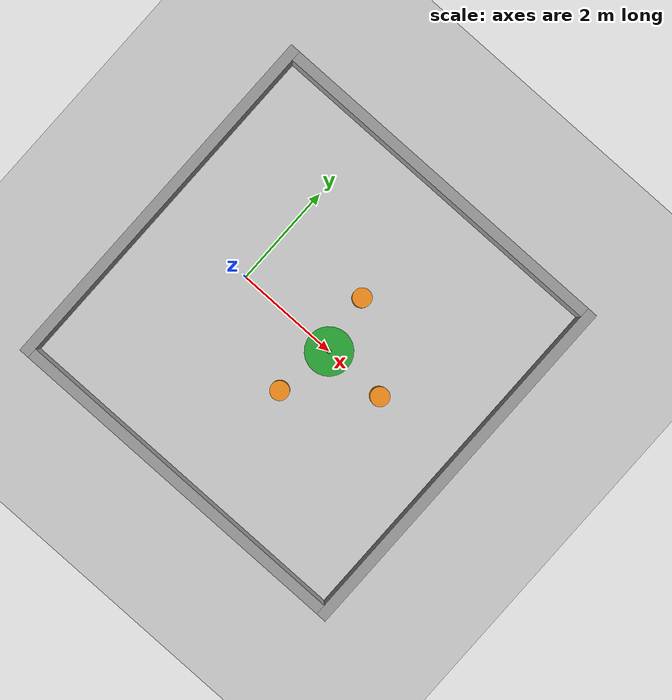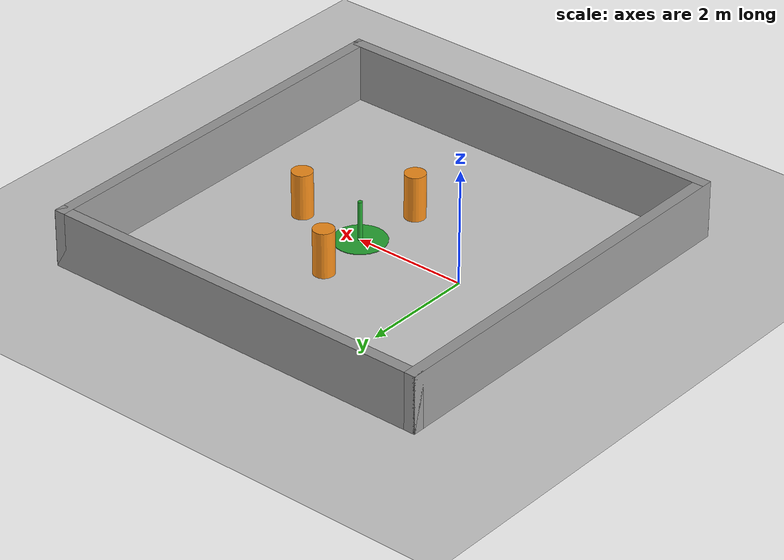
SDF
<?xml version="1.0"?>
<sdf version="1.6">
  <world name="default">

    <!-- ROS 2 State Plugin: Publishes /gazebo/model_states & provides /gazebo/set_entity_state -->
    <plugin name="gazebo_ros_state" filename="libgazebo_ros_state.so">
      <ros>
        <namespace>/gazebo</namespace>
      </ros>
      <update_rate>50.0</update_rate>
    </plugin>

    <!-- Physics settings for stable, fast RL steps -->
    <physics type="ode">
      <max_step_size>0.001</max_step_size>
      <real_time_factor>1.0</real_time_factor>
      <real_time_update_rate>1000.0</real_time_update_rate>
    </physics>

    <include>
      <uri>model://sun</uri>
    </include>

    <include>
      <uri>model://ground_plane</uri>
    </include>

    <!-- ARENA BOUNDARY WALLS (Encloses x: [-2.0, 5.0], y: [-3.5, 3.5])    -->

    <!-- Front Wall (x = 5.0) -->
    <model name="wall_front">
      <static>true</static>
      <pose>5.0 0.0 0.5 0 0 0</pose>
      <link name="link">
        <collision name="collision">
          <geometry><box><size>0.2 7.2 1.0</size></box></geometry>
        </collision>
        <visual name="visual">
          <geometry><box><size>0.2 7.2 1.0</size></box></geometry>
          <material><script><name>Gazebo/Grey</name></script></material>
        </visual>
      </link>
    </model>

    <!-- Back Wall (x = -2.0) -->
    <model name="wall_back">
      <static>true</static>
      <pose>-2.0 0.0 0.5 0 0 0</pose>
      <link name="link">
        <collision name="collision">
          <geometry><box><size>0.2 7.2 1.0</size></box></geometry>
        </collision>
        <visual name="visual">
          <geometry><box><size>0.2 7.2 1.0</size></box></geometry>
          <material><script><name>Gazebo/Grey</name></script></material>
        </visual>
      </link>
    </model>

    <!-- Left Wall (y = 3.5) -->
    <model name="wall_left">
      <static>true</static>
      <pose>1.5 3.5 0.5 0 0 0</pose>
      <link name="link">
        <collision name="collision">
          <geometry><box><size>7.2 0.2 1.0</size></box></geometry>
        </collision>
        <visual name="visual">
          <geometry><box><size>7.2 0.2 1.0</size></box></geometry>
          <material><script><name>Gazebo/Grey</name></script></material>
        </visual>
      </link>
    </model>

    <!-- Right Wall (y = -3.5) -->
    <model name="wall_right">
      <static>true</static>
      <pose>1.5 -3.5 0.5 0 0 0</pose>
      <link name="link">
        <collision name="collision">
          <geometry><box><size>7.2 0.2 1.0</size></box></geometry>
        </collision>
        <visual name="visual">
          <geometry><box><size>7.2 0.2 1.0</size></box></geometry>
          <material><script><name>Gazebo/Grey</name></script></material>
        </visual>
      </link>
    </model>

    <!-- 3 SPACED-OUT ARENA OBSTACLES (Matches ugv_env.py)                 -->

    <!-- Left Pillar (x = 1.8, y = 1.1) -->
    <model name="obstacle_left">
      <static>true</static>
      <pose>1.8 1.1 0.4 0 0 0</pose>
      <link name="link">
        <collision name="collision">
          <geometry><cylinder><radius>0.18</radius><length>0.8</length></cylinder></geometry>
        </collision>
        <visual name="visual">
          <geometry><cylinder><radius>0.18</radius><length>0.8</length></cylinder></geometry>
          <material><script><name>Gazebo/Orange</name></script></material>
        </visual>
      </link>
    </model>

    <!-- Right Pillar (x = 1.8, y = -1.1) -->
    <model name="obstacle_right">
      <static>true</static>
      <pose>1.8 -1.1 0.4 0 0 0</pose>
      <link name="link">
        <collision name="collision">
          <geometry><cylinder><radius>0.18</radius><length>0.8</length></cylinder></geometry>
        </collision>
        <visual name="visual">
          <geometry><cylinder><radius>0.18</radius><length>0.8</length></cylinder></geometry>
          <material><script><name>Gazebo/Orange</name></script></material>
        </visual>
      </link>
    </model>

    <!-- Center-Far Pillar (x = 3.2, y = 0.0) -->
    <model name="obstacle_center">
      <static>true</static>
      <pose>3.2 0.0 0.4 0 0 0</pose>
      <link name="link">
        <collision name="collision">
          <geometry><cylinder><radius>0.18</radius><length>0.8</length></cylinder></geometry>
        </collision>
        <visual name="visual">
          <geometry><cylinder><radius>0.18</radius><length>0.8</length></cylinder></geometry>
          <material><script><name>Gazebo/Orange</name></script></material>
        </visual>
      </link>
    </model>

    <!-- VISUAL GOAL MARKER (Movable green target ring & pole)             -->
    <model name="goal_marker">
      <static>false</static>
      <pose>2.0 0.0 0.0 0 0 0</pose>
      <link name="link">
        <gravity>false</gravity>
        <kinematic>true</kinematic>
        <inertial>
          <mass>0.01</mass>
          <inertia>
            <ixx>0.0001</ixx><ixy>0</ixy><ixz>0</ixz>
            <iyy>0.0001</iyy><iyz>0</iyz><izz>0.0001</izz>
          </inertia>
        </inertial>

        <visual name="target_ring">
          <pose>0 0 0.005 0 0 0</pose>
          <geometry>
            <cylinder>
              <radius>0.45</radius>
              <length>0.01</length>
            </cylinder>
          </geometry>
          <material>
            <script><name>Gazebo/Green</name></script>
          </material>
        </visual>

        <visual name="beacon_pole">
          <pose>0 0 0.35 0 0 0</pose>
          <geometry>
            <cylinder>
              <radius>0.04</radius>
              <length>0.70</length>
            </cylinder>
          </geometry>
          <material>
            <script><name>Gazebo/Green</name></script>
          </material>
        </visual>
      </link>
    </model>

  </world>
</sdf>
